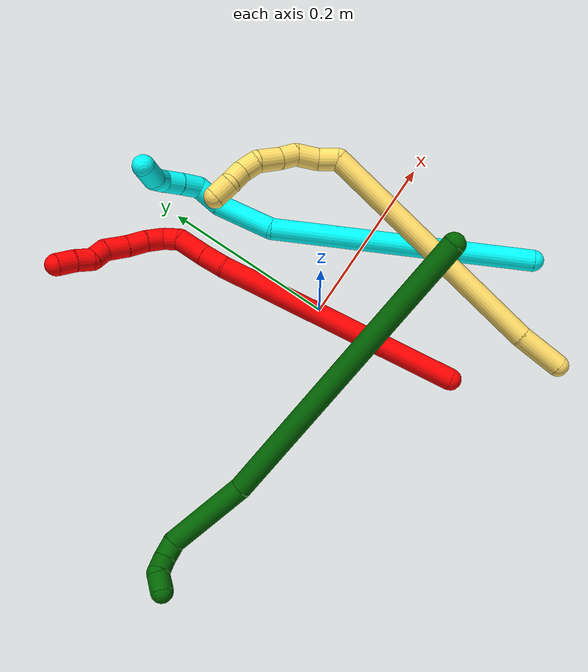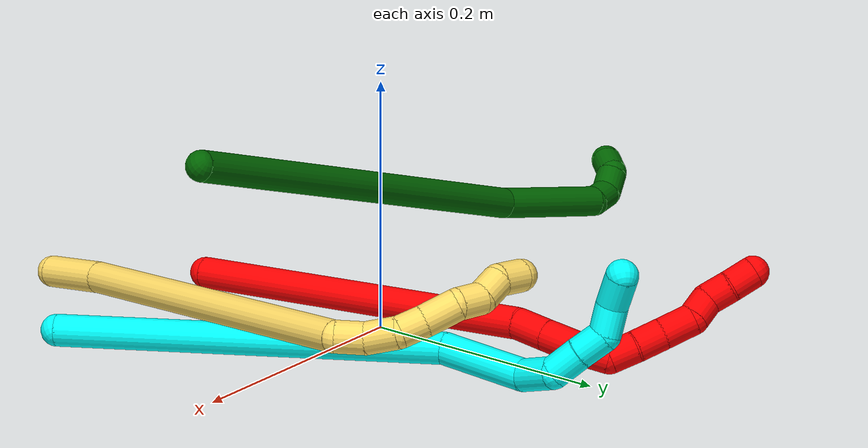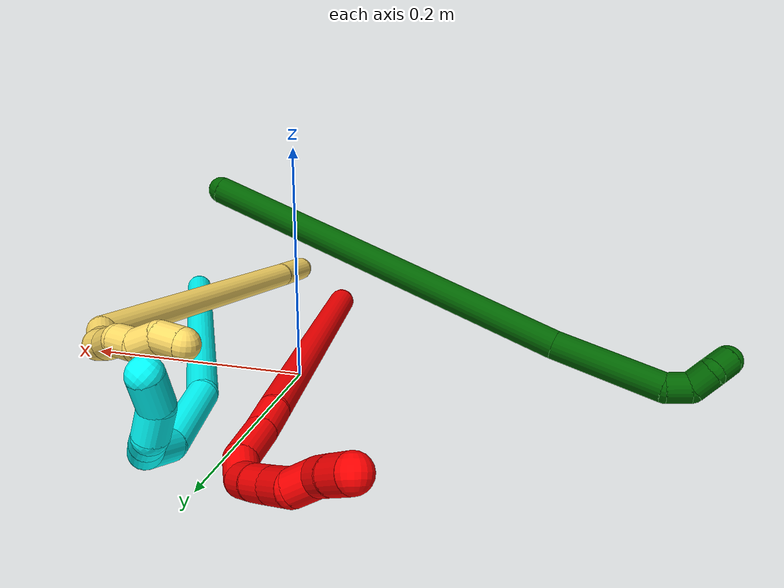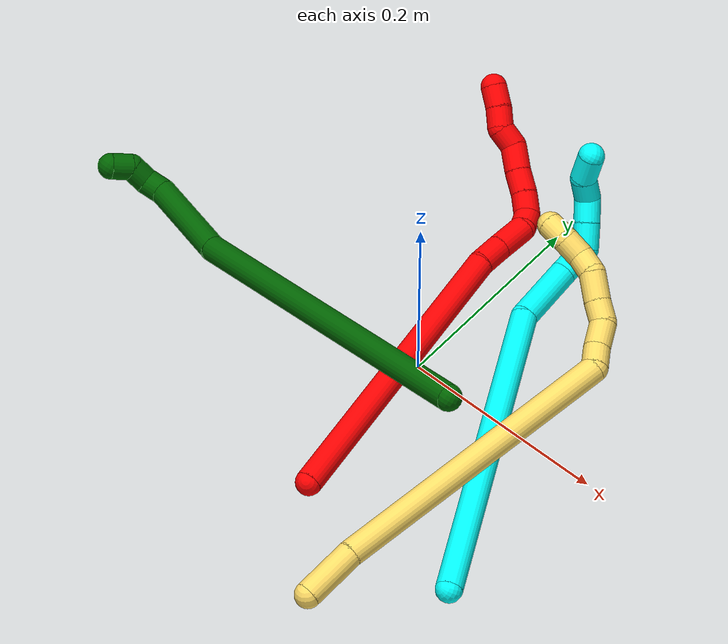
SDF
<sdf version="1.7">
 <world name="default">
  <model name="2">
   <static>0</static>
   <link name="2">
    <collision name="collision-cylinder-e_1_1_4">
     <pose>-0.03202 0.120214 0.07095 -1.03762 -0.225487 0.129117</pose>
     <geometry><cylinder><radius>0.0125</radius><length>0.286429</length></cylinder></geometry>
     <surface>
      <friction><ode><mu>1.16</mu><mu2>1.16</mu2><slip1>0</slip1><slip2>0</slip2></ode></friction>
      <contact><ode><kp>1e+06</kp><kd>1</kd><max_vel>0</max_vel><min_depth>0.001</min_depth></ode></contact>
     </surface>
    </collision>
    <visual name="visual-cylinder-e_1_1_4">
     <pose>-0.03202 0.120214 0.07095 -1.03762 -0.225487 0.129117</pose>
     <geometry><cylinder><radius>0.0125</radius><length>0.286429</length></cylinder></geometry>
     <material><ambient>1 0 0 1</ambient></material>
    </visual>
    <collision name="collision-cylinder-e_2_4_5">
     <pose>-0.068343 0.250228 0.15053 -0.848756 -0.318293 0.144789</pose>
     <geometry><cylinder><radius>0.0125</radius><length>0.0275</length></cylinder></geometry>
     <surface>
      <friction><ode><mu>1.16</mu><mu2>1.16</mu2><slip1>0</slip1><slip2>0</slip2></ode></friction>
      <contact><ode><kp>1e+06</kp><kd>1</kd><max_vel>0</max_vel><min_depth>0.001</min_depth></ode></contact>
     </surface>
    </collision>
    <visual name="visual-cylinder-e_2_4_5">
     <pose>-0.068343 0.250228 0.15053 -0.848756 -0.318293 0.144789</pose>
     <geometry><cylinder><radius>0.0125</radius><length>0.0275</length></cylinder></geometry>
     <material><ambient>1 0 0 1</ambient></material>
    </visual>
    <collision name="collision-cylinder-e_3_5_6">
     <pose>-0.078867 0.272588 0.169424 -0.885742 -0.366256 0.175231</pose>
     <geometry><cylinder><radius>0.0125</radius><length>0.034744</length></cylinder></geometry>
     <surface>
      <friction><ode><mu>1.16</mu><mu2>1.16</mu2><slip1>0</slip1><slip2>0</slip2></ode></friction>
      <contact><ode><kp>1e+06</kp><kd>1</kd><max_vel>0</max_vel><min_depth>0.001</min_depth></ode></contact>
     </surface>
    </collision>
    <visual name="visual-cylinder-e_3_5_6">
     <pose>-0.078867 0.272588 0.169424 -0.885742 -0.366256 0.175231</pose>
     <geometry><cylinder><radius>0.0125</radius><length>0.034744</length></cylinder></geometry>
     <material><ambient>1 0 0 1</ambient></material>
    </visual>
    <collision name="collision-cylinder-e_4_6_7">
     <pose>-0.083955 0.292014 0.186871 -0.762705 0.113574 -0.045582</pose>
     <geometry><cylinder><radius>0.0125</radius><length>0.020005</length></cylinder></geometry>
     <surface>
      <friction><ode><mu>1.16</mu><mu2>1.16</mu2><slip1>0</slip1><slip2>0</slip2></ode></friction>
      <contact><ode><kp>1e+06</kp><kd>1</kd><max_vel>0</max_vel><min_depth>0.001</min_depth></ode></contact>
     </surface>
    </collision>
    <visual name="visual-cylinder-e_4_6_7">
     <pose>-0.083955 0.292014 0.186871 -0.762705 0.113574 -0.045582</pose>
     <geometry><cylinder><radius>0.0125</radius><length>0.020005</length></cylinder></geometry>
     <material><ambient>1 0 0 1</ambient></material>
    </visual>
    <collision name="collision-cylinder-e_5_7_8">
     <pose>-0.078228 0.308446 0.195535 -1.41734 0.44311 -0.381487</pose>
     <geometry><cylinder><radius>0.0125</radius><length>0.021428</length></cylinder></geometry>
     <surface>
      <friction><ode><mu>1.16</mu><mu2>1.16</mu2><slip1>0</slip1><slip2>0</slip2></ode></friction>
      <contact><ode><kp>1e+06</kp><kd>1</kd><max_vel>0</max_vel><min_depth>0.001</min_depth></ode></contact>
     </surface>
    </collision>
    <visual name="visual-cylinder-e_5_7_8">
     <pose>-0.078228 0.308446 0.195535 -1.41734 0.44311 -0.381487</pose>
     <geometry><cylinder><radius>0.0125</radius><length>0.021428</length></cylinder></geometry>
     <material><ambient>1 0 0 1</ambient></material>
    </visual>
    <collision name="collision-cylinder-e_6_8_9">
     <pose>-0.067416 0.327435 0.198404 -1.42444 0.578347 -0.502872</pose>
     <geometry><cylinder><radius>0.0125</radius><length>0.022753</length></cylinder></geometry>
     <surface>
      <friction><ode><mu>1.16</mu><mu2>1.16</mu2><slip1>0</slip1><slip2>0</slip2></ode></friction>
      <contact><ode><kp>1e+06</kp><kd>1</kd><max_vel>0</max_vel><min_depth>0.001</min_depth></ode></contact>
     </surface>
    </collision>
    <visual name="visual-cylinder-e_6_8_9">
     <pose>-0.067416 0.327435 0.198404 -1.42444 0.578347 -0.502872</pose>
     <geometry><cylinder><radius>0.0125</radius><length>0.022753</length></cylinder></geometry>
     <material><ambient>1 0 0 1</ambient></material>
    </visual>
    <collision name="collision-cylinder-e_7_9_10">
     <pose>-0.05523 0.348347 0.201045 -1.4623 0.476676 -0.429148</pose>
     <geometry><cylinder><radius>0.0125</radius><length>0.026011</length></cylinder></geometry>
     <surface>
      <friction><ode><mu>1.16</mu><mu2>1.16</mu2><slip1>0</slip1><slip2>0</slip2></ode></friction>
      <contact><ode><kp>1e+06</kp><kd>1</kd><max_vel>0</max_vel><min_depth>0.001</min_depth></ode></contact>
     </surface>
    </collision>
    <visual name="visual-cylinder-e_7_9_10">
     <pose>-0.05523 0.348347 0.201045 -1.4623 0.476676 -0.429148</pose>
     <geometry><cylinder><radius>0.0125</radius><length>0.026011</length></cylinder></geometry>
     <material><ambient>1 0 0 1</ambient></material>
    </visual>
    <collision name="collision-cylinder-e_8_10_11">
     <pose>-0.041556 0.365752 0.199525 -2.00873 0.867549 -1.25901</pose>
     <geometry><cylinder><radius>0.0125</radius><length>0.020206</length></cylinder></geometry>
     <surface>
      <friction><ode><mu>1.16</mu><mu2>1.16</mu2><slip1>0</slip1><slip2>0</slip2></ode></friction>
      <contact><ode><kp>1e+06</kp><kd>1</kd><max_vel>0</max_vel><min_depth>0.001</min_depth></ode></contact>
     </surface>
    </collision>
    <visual name="visual-cylinder-e_8_10_11">
     <pose>-0.041556 0.365752 0.199525 -2.00873 0.867549 -1.25901</pose>
     <geometry><cylinder><radius>0.0125</radius><length>0.020206</length></cylinder></geometry>
     <material><ambient>1 0 0 1</ambient></material>
    </visual>
    <collision name="collision-cylinder-e_9_11_12">
     <pose>-0.030081 0.380953 0.196838 -1.56183 0.38559 -0.382231</pose>
     <geometry><cylinder><radius>0.0125</radius><length>0.02004</length></cylinder></geometry>
     <surface>
      <friction><ode><mu>1.16</mu><mu2>1.16</mu2><slip1>0</slip1><slip2>0</slip2></ode></friction>
      <contact><ode><kp>1e+06</kp><kd>1</kd><max_vel>0</max_vel><min_depth>0.001</min_depth></ode></contact>
     </surface>
    </collision>
    <visual name="visual-cylinder-e_9_11_12">
     <pose>-0.030081 0.380953 0.196838 -1.56183 0.38559 -0.382231</pose>
     <geometry><cylinder><radius>0.0125</radius><length>0.02004</length></cylinder></geometry>
     <material><ambient>1 0 0 1</ambient></material>
    </visual>
    <collision name="collision-cylinder-e_10_12_2">
     <pose>-0.021087 0.399278 0.1969 -1.57317 0.524136 -0.525326</pose>
     <geometry><cylinder><radius>0.0125</radius><length>0.020885</length></cylinder></geometry>
     <surface>
      <friction><ode><mu>1.16</mu><mu2>1.16</mu2><slip1>0</slip1><slip2>0</slip2></ode></friction>
      <contact><ode><kp>1e+06</kp><kd>1</kd><max_vel>0</max_vel><min_depth>0.001</min_depth></ode></contact>
     </surface>
    </collision>
    <visual name="visual-cylinder-e_10_12_2">
     <pose>-0.021087 0.399278 0.1969 -1.57317 0.524136 -0.525326</pose>
     <geometry><cylinder><radius>0.0125</radius><length>0.020885</length></cylinder></geometry>
     <material><ambient>1 0 0 1</ambient></material>
    </visual>
    <collision name="collision-sphere-2">
     <pose>-0.015861 0.408319 0.196878 0 -0 0</pose>
     <geometry><sphere><radius>0.0125</radius></sphere></geometry>
     <surface>
      <friction><ode><mu>1.16</mu><mu2>1.16</mu2><slip1>0</slip1><slip2>0</slip2></ode></friction>
      <contact><ode><kp>1e+06</kp><kd>1</kd><max_vel>0</max_vel><min_depth>0.001</min_depth></ode></contact>
     </surface>
    </collision>
    <visual name="visual-sphere-2">
     <pose>-0.015861 0.408319 0.196878 0 -0 0</pose>
     <geometry><sphere><radius>0.0125</radius></sphere></geometry>
     <material><ambient>1 0 0 1</ambient></material>
    </visual>
    <collision name="collision-sphere-12">
     <pose>-0.026313 0.390237 0.196921 0 -0 0</pose>
     <geometry><sphere><radius>0.0125</radius></sphere></geometry>
     <surface>
      <friction><ode><mu>1.16</mu><mu2>1.16</mu2><slip1>0</slip1><slip2>0</slip2></ode></friction>
      <contact><ode><kp>1e+06</kp><kd>1</kd><max_vel>0</max_vel><min_depth>0.001</min_depth></ode></contact>
     </surface>
    </collision>
    <visual name="visual-sphere-12">
     <pose>-0.026313 0.390237 0.196921 0 -0 0</pose>
     <geometry><sphere><radius>0.0125</radius></sphere></geometry>
     <material><ambient>1 0 0 1</ambient></material>
    </visual>
    <collision name="collision-sphere-11">
     <pose>-0.03385 0.371669 0.196755 0 -0 0</pose>
     <geometry><sphere><radius>0.0125</radius></sphere></geometry>
     <surface>
      <friction><ode><mu>1.16</mu><mu2>1.16</mu2><slip1>0</slip1><slip2>0</slip2></ode></friction>
      <contact><ode><kp>1e+06</kp><kd>1</kd><max_vel>0</max_vel><min_depth>0.001</min_depth></ode></contact>
     </surface>
    </collision>
    <visual name="visual-sphere-11">
     <pose>-0.03385 0.371669 0.196755 0 -0 0</pose>
     <geometry><sphere><radius>0.0125</radius></sphere></geometry>
     <material><ambient>1 0 0 1</ambient></material>
    </visual>
    <collision name="collision-sphere-10">
     <pose>-0.049262 0.359835 0.202296 0 -0 0</pose>
     <geometry><sphere><radius>0.0125</radius></sphere></geometry>
     <surface>
      <friction><ode><mu>1.16</mu><mu2>1.16</mu2><slip1>0</slip1><slip2>0</slip2></ode></friction>
      <contact><ode><kp>1e+06</kp><kd>1</kd><max_vel>0</max_vel><min_depth>0.001</min_depth></ode></contact>
     </surface>
    </collision>
    <visual name="visual-sphere-10">
     <pose>-0.049262 0.359835 0.202296 0 -0 0</pose>
     <geometry><sphere><radius>0.0125</radius></sphere></geometry>
     <material><ambient>1 0 0 1</ambient></material>
    </visual>
    <collision name="collision-sphere-9">
     <pose>-0.061197 0.33686 0.199793 0 -0 0</pose>
     <geometry><sphere><radius>0.0125</radius></sphere></geometry>
     <surface>
      <friction><ode><mu>1.16</mu><mu2>1.16</mu2><slip1>0</slip1><slip2>0</slip2></ode></friction>
      <contact><ode><kp>1e+06</kp><kd>1</kd><max_vel>0</max_vel><min_depth>0.001</min_depth></ode></contact>
     </surface>
    </collision>
    <visual name="visual-sphere-9">
     <pose>-0.061197 0.33686 0.199793 0 -0 0</pose>
     <geometry><sphere><radius>0.0125</radius></sphere></geometry>
     <material><ambient>1 0 0 1</ambient></material>
    </visual>
    <collision name="collision-sphere-4">
     <pose>-0.06404 0.240427 0.141899 0 -0 0</pose>
     <geometry><sphere><radius>0.0125</radius></sphere></geometry>
     <surface>
      <friction><ode><mu>1.16</mu><mu2>1.16</mu2><slip1>0</slip1><slip2>0</slip2></ode></friction>
      <contact><ode><kp>1e+06</kp><kd>1</kd><max_vel>0</max_vel><min_depth>0.001</min_depth></ode></contact>
     </surface>
    </collision>
    <visual name="visual-sphere-4">
     <pose>-0.06404 0.240427 0.141899 0 -0 0</pose>
     <geometry><sphere><radius>0.0125</radius></sphere></geometry>
     <material><ambient>1 0 0 1</ambient></material>
    </visual>
    <collision name="collision-sphere-1">
     <geometry><sphere><radius>0.0125</radius></sphere></geometry>
     <surface>
      <friction><ode><mu>1.16</mu><mu2>1.16</mu2><slip1>0</slip1><slip2>0</slip2></ode></friction>
      <contact><ode><kp>1e+06</kp><kd>1</kd><max_vel>0</max_vel><min_depth>0.001</min_depth></ode></contact>
     </surface>
    </collision>
    <visual name="visual-sphere-1">
     <geometry><sphere><radius>0.0125</radius></sphere></geometry>
     <material><ambient>1 0 0 1</ambient></material>
    </visual>
    <collision name="collision-sphere-8">
     <pose>-0.073634 0.318011 0.197015 0 -0 0</pose>
     <geometry><sphere><radius>0.0125</radius></sphere></geometry>
     <surface>
      <friction><ode><mu>1.16</mu><mu2>1.16</mu2><slip1>0</slip1><slip2>0</slip2></ode></friction>
      <contact><ode><kp>1e+06</kp><kd>1</kd><max_vel>0</max_vel><min_depth>0.001</min_depth></ode></contact>
     </surface>
    </collision>
    <visual name="visual-sphere-8">
     <pose>-0.073634 0.318011 0.197015 0 -0 0</pose>
     <geometry><sphere><radius>0.0125</radius></sphere></geometry>
     <material><ambient>1 0 0 1</ambient></material>
    </visual>
    <collision name="collision-sphere-5">
     <pose>-0.072646 0.260028 0.159161 0 -0 0</pose>
     <geometry><sphere><radius>0.0125</radius></sphere></geometry>
     <surface>
      <friction><ode><mu>1.16</mu><mu2>1.16</mu2><slip1>0</slip1><slip2>0</slip2></ode></friction>
      <contact><ode><kp>1e+06</kp><kd>1</kd><max_vel>0</max_vel><min_depth>0.001</min_depth></ode></contact>
     </surface>
    </collision>
    <visual name="visual-sphere-5">
     <pose>-0.072646 0.260028 0.159161 0 -0 0</pose>
     <geometry><sphere><radius>0.0125</radius></sphere></geometry>
     <material><ambient>1 0 0 1</ambient></material>
    </visual>
    <collision name="collision-sphere-6">
     <pose>-0.085089 0.285148 0.179686 0 -0 0</pose>
     <geometry><sphere><radius>0.0125</radius></sphere></geometry>
     <surface>
      <friction><ode><mu>1.16</mu><mu2>1.16</mu2><slip1>0</slip1><slip2>0</slip2></ode></friction>
      <contact><ode><kp>1e+06</kp><kd>1</kd><max_vel>0</max_vel><min_depth>0.001</min_depth></ode></contact>
     </surface>
    </collision>
    <visual name="visual-sphere-6">
     <pose>-0.085089 0.285148 0.179686 0 -0 0</pose>
     <geometry><sphere><radius>0.0125</radius></sphere></geometry>
     <material><ambient>1 0 0 1</ambient></material>
    </visual>
    <collision name="collision-sphere-7">
     <pose>-0.082821 0.29888 0.194056 0 -0 0</pose>
     <geometry><sphere><radius>0.0125</radius></sphere></geometry>
     <surface>
      <friction><ode><mu>1.16</mu><mu2>1.16</mu2><slip1>0</slip1><slip2>0</slip2></ode></friction>
      <contact><ode><kp>1e+06</kp><kd>1</kd><max_vel>0</max_vel><min_depth>0.001</min_depth></ode></contact>
     </surface>
    </collision>
    <visual name="visual-sphere-7">
     <pose>-0.082821 0.29888 0.194056 0 -0 0</pose>
     <geometry><sphere><radius>0.0125</radius></sphere></geometry>
     <material><ambient>1 0 0 1</ambient></material>
    </visual>
    <inertial>
     <pose>-0.044 0.20622 0.120217 0 -0 0</pose>
     <mass>0.5</mass>
     <inertia>
      <ixx>0.002162</ixx>
      <ixy>0</ixy>
      <ixz>0</ixz>
      <iyy>0.001327</iyy>
      <iyz>0</iyz>
      <izz>-0.001216</izz>
     </inertia>
    </inertial>
   </link>
   <pose>0.014856 -0.168418 0.011496 2.56928 0.015216 -2.78324</pose>
  </model>
  <model name="3">
   <static>0</static>
   <link name="3">
    <collision name="collision-cylinder-e_1_1_4">
     <pose>-0.077032 0.123366 0.042637 -1.23803 -0.533155 0.384294</pose>
     <geometry><cylinder><radius>0.0125</radius><length>0.303123</length></cylinder></geometry>
     <surface>
      <friction><ode><mu>1.16</mu><mu2>1.16</mu2><slip1>0</slip1><slip2>0</slip2></ode></friction>
      <contact><ode><kp>1e+06</kp><kd>1</kd><max_vel>0</max_vel><min_depth>0.001</min_depth></ode></contact>
     </surface>
    </collision>
    <visual name="visual-cylinder-e_1_1_4">
     <pose>-0.077032 0.123366 0.042637 -1.23803 -0.533155 0.384294</pose>
     <geometry><cylinder><radius>0.0125</radius><length>0.303123</length></cylinder></geometry>
     <material><ambient>0.003922 1 0.996078 1</ambient></material>
    </visual>
    <collision name="collision-cylinder-e_2_4_5">
     <pose>-0.172145 0.267742 0.105692 -0.799721 -0.55296 0.2387</pose>
     <geometry><cylinder><radius>0.0125</radius><length>0.068856</length></cylinder></geometry>
     <surface>
      <friction><ode><mu>1.16</mu><mu2>1.16</mu2><slip1>0</slip1><slip2>0</slip2></ode></friction>
      <contact><ode><kp>1e+06</kp><kd>1</kd><max_vel>0</max_vel><min_depth>0.001</min_depth></ode></contact>
     </surface>
    </collision>
    <visual name="visual-cylinder-e_2_4_5">
     <pose>-0.172145 0.267742 0.105692 -0.799721 -0.55296 0.2387</pose>
     <geometry><cylinder><radius>0.0125</radius><length>0.068856</length></cylinder></geometry>
     <material><ambient>0.003922 1 0.996078 1</ambient></material>
    </visual>
    <collision name="collision-cylinder-e_3_5_6">
     <pose>-0.203274 0.293802 0.13225 -0.688115 -1.02356 0.397214</pose>
     <geometry><cylinder><radius>0.0125</radius><length>0.030556</length></cylinder></geometry>
     <surface>
      <friction><ode><mu>1.16</mu><mu2>1.16</mu2><slip1>0</slip1><slip2>0</slip2></ode></friction>
      <contact><ode><kp>1e+06</kp><kd>1</kd><max_vel>0</max_vel><min_depth>0.001</min_depth></ode></contact>
     </surface>
    </collision>
    <visual name="visual-cylinder-e_3_5_6">
     <pose>-0.203274 0.293802 0.13225 -0.688115 -1.02356 0.397214</pose>
     <geometry><cylinder><radius>0.0125</radius><length>0.030556</length></cylinder></geometry>
     <material><ambient>0.003922 1 0.996078 1</ambient></material>
    </visual>
    <collision name="collision-cylinder-e_4_6_7">
     <pose>-0.226141 0.305661 0.135009 -2.03166 -0.911896 1.33851</pose>
     <geometry><cylinder><radius>0.0125</radius><length>0.02484</length></cylinder></geometry>
     <surface>
      <friction><ode><mu>1.16</mu><mu2>1.16</mu2><slip1>0</slip1><slip2>0</slip2></ode></friction>
      <contact><ode><kp>1e+06</kp><kd>1</kd><max_vel>0</max_vel><min_depth>0.001</min_depth></ode></contact>
     </surface>
    </collision>
    <visual name="visual-cylinder-e_4_6_7">
     <pose>-0.226141 0.305661 0.135009 -2.03166 -0.911896 1.33851</pose>
     <geometry><cylinder><radius>0.0125</radius><length>0.02484</length></cylinder></geometry>
     <material><ambient>0.003922 1 0.996078 1</ambient></material>
    </visual>
    <collision name="collision-cylinder-e_5_7_8">
     <pose>-0.244701 0.319299 0.128554 -1.99376 -0.862483 1.23708</pose>
     <geometry><cylinder><radius>0.0125</radius><length>0.023017</length></cylinder></geometry>
     <surface>
      <friction><ode><mu>1.16</mu><mu2>1.16</mu2><slip1>0</slip1><slip2>0</slip2></ode></friction>
      <contact><ode><kp>1e+06</kp><kd>1</kd><max_vel>0</max_vel><min_depth>0.001</min_depth></ode></contact>
     </surface>
    </collision>
    <visual name="visual-cylinder-e_5_7_8">
     <pose>-0.244701 0.319299 0.128554 -1.99376 -0.862483 1.23708</pose>
     <geometry><cylinder><radius>0.0125</radius><length>0.023017</length></cylinder></geometry>
     <material><ambient>0.003922 1 0.996078 1</ambient></material>
    </visual>
    <collision name="collision-cylinder-e_6_8_9">
     <pose>-0.261446 0.327066 0.117089 -3.03003 -0.75868 2.86325</pose>
     <geometry><cylinder><radius>0.0125</radius><length>0.023271</length></cylinder></geometry>
     <surface>
      <friction><ode><mu>1.16</mu><mu2>1.16</mu2><slip1>0</slip1><slip2>0</slip2></ode></friction>
      <contact><ode><kp>1e+06</kp><kd>1</kd><max_vel>0</max_vel><min_depth>0.001</min_depth></ode></contact>
     </surface>
    </collision>
    <visual name="visual-cylinder-e_6_8_9">
     <pose>-0.261446 0.327066 0.117089 -3.03003 -0.75868 2.86325</pose>
     <geometry><cylinder><radius>0.0125</radius><length>0.023271</length></cylinder></geometry>
     <material><ambient>0.003922 1 0.996078 1</ambient></material>
    </visual>
    <collision name="collision-cylinder-e_7_9_2">
     <pose>-0.281609 0.327087 0.103724 2.95885 -1.17662 -2.8686</pose>
     <geometry><cylinder><radius>0.0125</radius><length>0.026338</length></cylinder></geometry>
     <surface>
      <friction><ode><mu>1.16</mu><mu2>1.16</mu2><slip1>0</slip1><slip2>0</slip2></ode></friction>
      <contact><ode><kp>1e+06</kp><kd>1</kd><max_vel>0</max_vel><min_depth>0.001</min_depth></ode></contact>
     </surface>
    </collision>
    <visual name="visual-cylinder-e_7_9_2">
     <pose>-0.281609 0.327087 0.103724 2.95885 -1.17662 -2.8686</pose>
     <geometry><cylinder><radius>0.0125</radius><length>0.026338</length></cylinder></geometry>
     <material><ambient>0.003922 1 0.996078 1</ambient></material>
    </visual>
    <collision name="collision-sphere-2">
     <pose>-0.293768 0.326168 0.098751 0 -0 0</pose>
     <geometry><sphere><radius>0.0125</radius></sphere></geometry>
     <surface>
      <friction><ode><mu>1.16</mu><mu2>1.16</mu2><slip1>0</slip1><slip2>0</slip2></ode></friction>
      <contact><ode><kp>1e+06</kp><kd>1</kd><max_vel>0</max_vel><min_depth>0.001</min_depth></ode></contact>
     </surface>
    </collision>
    <visual name="visual-sphere-2">
     <pose>-0.293768 0.326168 0.098751 0 -0 0</pose>
     <geometry><sphere><radius>0.0125</radius></sphere></geometry>
     <material><ambient>0.003922 1 0.996078 1</ambient></material>
    </visual>
    <collision name="collision-sphere-9">
     <pose>-0.26945 0.328006 0.108697 0 -0 0</pose>
     <geometry><sphere><radius>0.0125</radius></sphere></geometry>
     <surface>
      <friction><ode><mu>1.16</mu><mu2>1.16</mu2><slip1>0</slip1><slip2>0</slip2></ode></friction>
      <contact><ode><kp>1e+06</kp><kd>1</kd><max_vel>0</max_vel><min_depth>0.001</min_depth></ode></contact>
     </surface>
    </collision>
    <visual name="visual-sphere-9">
     <pose>-0.26945 0.328006 0.108697 0 -0 0</pose>
     <geometry><sphere><radius>0.0125</radius></sphere></geometry>
     <material><ambient>0.003922 1 0.996078 1</ambient></material>
    </visual>
    <collision name="collision-sphere-4">
     <pose>-0.154063 0.246731 0.085274 0 -0 0</pose>
     <geometry><sphere><radius>0.0125</radius></sphere></geometry>
     <surface>
      <friction><ode><mu>1.16</mu><mu2>1.16</mu2><slip1>0</slip1><slip2>0</slip2></ode></friction>
      <contact><ode><kp>1e+06</kp><kd>1</kd><max_vel>0</max_vel><min_depth>0.001</min_depth></ode></contact>
     </surface>
    </collision>
    <visual name="visual-sphere-4">
     <pose>-0.154063 0.246731 0.085274 0 -0 0</pose>
     <geometry><sphere><radius>0.0125</radius></sphere></geometry>
     <material><ambient>0.003922 1 0.996078 1</ambient></material>
    </visual>
    <collision name="collision-sphere-1">
     <geometry><sphere><radius>0.0125</radius></sphere></geometry>
     <surface>
      <friction><ode><mu>1.16</mu><mu2>1.16</mu2><slip1>0</slip1><slip2>0</slip2></ode></friction>
      <contact><ode><kp>1e+06</kp><kd>1</kd><max_vel>0</max_vel><min_depth>0.001</min_depth></ode></contact>
     </surface>
    </collision>
    <visual name="visual-sphere-1">
     <geometry><sphere><radius>0.0125</radius></sphere></geometry>
     <material><ambient>0.003922 1 0.996078 1</ambient></material>
    </visual>
    <collision name="collision-sphere-8">
     <pose>-0.253441 0.326126 0.125481 0 -0 0</pose>
     <geometry><sphere><radius>0.0125</radius></sphere></geometry>
     <surface>
      <friction><ode><mu>1.16</mu><mu2>1.16</mu2><slip1>0</slip1><slip2>0</slip2></ode></friction>
      <contact><ode><kp>1e+06</kp><kd>1</kd><max_vel>0</max_vel><min_depth>0.001</min_depth></ode></contact>
     </surface>
    </collision>
    <visual name="visual-sphere-8">
     <pose>-0.253441 0.326126 0.125481 0 -0 0</pose>
     <geometry><sphere><radius>0.0125</radius></sphere></geometry>
     <material><ambient>0.003922 1 0.996078 1</ambient></material>
    </visual>
    <collision name="collision-sphere-5">
     <pose>-0.190227 0.288753 0.126109 0 -0 0</pose>
     <geometry><sphere><radius>0.0125</radius></sphere></geometry>
     <surface>
      <friction><ode><mu>1.16</mu><mu2>1.16</mu2><slip1>0</slip1><slip2>0</slip2></ode></friction>
      <contact><ode><kp>1e+06</kp><kd>1</kd><max_vel>0</max_vel><min_depth>0.001</min_depth></ode></contact>
     </surface>
    </collision>
    <visual name="visual-sphere-5">
     <pose>-0.190227 0.288753 0.126109 0 -0 0</pose>
     <geometry><sphere><radius>0.0125</radius></sphere></geometry>
     <material><ambient>0.003922 1 0.996078 1</ambient></material>
    </visual>
    <collision name="collision-sphere-6">
     <pose>-0.216321 0.298851 0.13839 0 -0 0</pose>
     <geometry><sphere><radius>0.0125</radius></sphere></geometry>
     <surface>
      <friction><ode><mu>1.16</mu><mu2>1.16</mu2><slip1>0</slip1><slip2>0</slip2></ode></friction>
      <contact><ode><kp>1e+06</kp><kd>1</kd><max_vel>0</max_vel><min_depth>0.001</min_depth></ode></contact>
     </surface>
    </collision>
    <visual name="visual-sphere-6">
     <pose>-0.216321 0.298851 0.13839 0 -0 0</pose>
     <geometry><sphere><radius>0.0125</radius></sphere></geometry>
     <material><ambient>0.003922 1 0.996078 1</ambient></material>
    </visual>
    <collision name="collision-sphere-7">
     <pose>-0.235961 0.312472 0.131627 0 -0 0</pose>
     <geometry><sphere><radius>0.0125</radius></sphere></geometry>
     <surface>
      <friction><ode><mu>1.16</mu><mu2>1.16</mu2><slip1>0</slip1><slip2>0</slip2></ode></friction>
      <contact><ode><kp>1e+06</kp><kd>1</kd><max_vel>0</max_vel><min_depth>0.001</min_depth></ode></contact>
     </surface>
    </collision>
    <visual name="visual-sphere-7">
     <pose>-0.235961 0.312472 0.131627 0 -0 0</pose>
     <geometry><sphere><radius>0.0125</radius></sphere></geometry>
     <material><ambient>0.003922 1 0.996078 1</ambient></material>
    </visual>
    <inertial>
     <pose>-0.13233 0.191951 0.072024 0 -0 0</pose>
     <mass>0.5</mass>
     <inertia>
      <ixx>0.002627</ixx>
      <ixy>0</ixy>
      <ixz>0</ixz>
      <iyy>0.001948</iyy>
      <iyz>0</iyz>
      <izz>-0.000702</izz>
     </inertia>
    </inertial>
   </link>
   <pose>0.183592 -0.172844 0.011495 -2.80998 0.842393 -1.84039</pose>
  </model>
  <model name="5">
   <static>0</static>
   <link name="5">
    <collision name="collision-cylinder-e_1_1_4">
     <pose>0.001348 0.026733 0.003616 -1.43634 0.049923 -0.043627</pose>
     <geometry><cylinder><radius>0.0125</radius><length>0.05402</length></cylinder></geometry>
     <surface>
      <friction><ode><mu>1.16</mu><mu2>1.16</mu2><slip1>0</slip1><slip2>0</slip2></ode></friction>
      <contact><ode><kp>1e+06</kp><kd>1</kd><max_vel>0</max_vel><min_depth>0.001</min_depth></ode></contact>
     </surface>
    </collision>
    <visual name="visual-cylinder-e_1_1_4">
     <pose>0.001348 0.026733 0.003616 -1.43634 0.049923 -0.043627</pose>
     <geometry><cylinder><radius>0.0125</radius><length>0.05402</length></cylinder></geometry>
     <material><ambient>1 0.858824 0.4 1</ambient></material>
    </visual>
    <collision name="collision-cylinder-e_2_4_5">
     <pose>0.024564 0.193936 0.018208 -1.49282 0.153975 -0.142454</pose>
     <geometry><cylinder><radius>0.0125</radius><length>0.285169</length></cylinder></geometry>
     <surface>
      <friction><ode><mu>1.16</mu><mu2>1.16</mu2><slip1>0</slip1><slip2>0</slip2></ode></friction>
      <contact><ode><kp>1e+06</kp><kd>1</kd><max_vel>0</max_vel><min_depth>0.001</min_depth></ode></contact>
     </surface>
    </collision>
    <visual name="visual-cylinder-e_2_4_5">
     <pose>0.024564 0.193936 0.018208 -1.49282 0.153975 -0.142454</pose>
     <geometry><cylinder><radius>0.0125</radius><length>0.285169</length></cylinder></geometry>
     <material><ambient>1 0.858824 0.4 1</ambient></material>
    </visual>
    <collision name="collision-cylinder-e_3_5_6">
     <pose>0.039745 0.34376 0.030178 -1.46484 -0.617949 0.559067</pose>
     <geometry><cylinder><radius>0.0125</radius><length>0.023083</length></cylinder></geometry>
     <surface>
      <friction><ode><mu>1.16</mu><mu2>1.16</mu2><slip1>0</slip1><slip2>0</slip2></ode></friction>
      <contact><ode><kp>1e+06</kp><kd>1</kd><max_vel>0</max_vel><min_depth>0.001</min_depth></ode></contact>
     </surface>
    </collision>
    <visual name="visual-cylinder-e_3_5_6">
     <pose>0.039745 0.34376 0.030178 -1.46484 -0.617949 0.559067</pose>
     <geometry><cylinder><radius>0.0125</radius><length>0.023083</length></cylinder></geometry>
     <material><ambient>1 0.858824 0.4 1</ambient></material>
    </visual>
    <collision name="collision-cylinder-e_4_6_7">
     <pose>0.027922 0.364109 0.035602 -1.18782 -0.40884 0.278166</pose>
     <geometry><cylinder><radius>0.0125</radius><length>0.025835</length></cylinder></geometry>
     <surface>
      <friction><ode><mu>1.16</mu><mu2>1.16</mu2><slip1>0</slip1><slip2>0</slip2></ode></friction>
      <contact><ode><kp>1e+06</kp><kd>1</kd><max_vel>0</max_vel><min_depth>0.001</min_depth></ode></contact>
     </surface>
    </collision>
    <visual name="visual-cylinder-e_4_6_7">
     <pose>0.027922 0.364109 0.035602 -1.18782 -0.40884 0.278166</pose>
     <geometry><cylinder><radius>0.0125</radius><length>0.025835</length></cylinder></geometry>
     <material><ambient>1 0.858824 0.4 1</ambient></material>
    </visual>
    <collision name="collision-cylinder-e_5_7_8">
     <pose>0.015484 0.380283 0.044824 -0.824255 -0.802488 0.366774</pose>
     <geometry><cylinder><radius>0.0125</radius><length>0.020311</length></cylinder></geometry>
     <surface>
      <friction><ode><mu>1.16</mu><mu2>1.16</mu2><slip1>0</slip1><slip2>0</slip2></ode></friction>
      <contact><ode><kp>1e+06</kp><kd>1</kd><max_vel>0</max_vel><min_depth>0.001</min_depth></ode></contact>
     </surface>
    </collision>
    <visual name="visual-cylinder-e_5_7_8">
     <pose>0.015484 0.380283 0.044824 -0.824255 -0.802488 0.366774</pose>
     <geometry><cylinder><radius>0.0125</radius><length>0.020311</length></cylinder></geometry>
     <material><ambient>1 0.858824 0.4 1</ambient></material>
    </visual>
    <collision name="collision-cylinder-e_6_8_9">
     <pose>-0.00057 0.39303 0.057131 -0.788868 -0.687242 0.295707</pose>
     <geometry><cylinder><radius>0.0125</radius><length>0.02759</length></cylinder></geometry>
     <surface>
      <friction><ode><mu>1.16</mu><mu2>1.16</mu2><slip1>0</slip1><slip2>0</slip2></ode></friction>
      <contact><ode><kp>1e+06</kp><kd>1</kd><max_vel>0</max_vel><min_depth>0.001</min_depth></ode></contact>
     </surface>
    </collision>
    <visual name="visual-cylinder-e_6_8_9">
     <pose>-0.00057 0.39303 0.057131 -0.788868 -0.687242 0.295707</pose>
     <geometry><cylinder><radius>0.0125</radius><length>0.02759</length></cylinder></geometry>
     <material><ambient>1 0.858824 0.4 1</ambient></material>
    </visual>
    <collision name="collision-cylinder-e_7_9_10">
     <pose>-0.0188 0.403934 0.067019 -0.952422 -1.16286 0.653676</pose>
     <geometry><cylinder><radius>0.0125</radius><length>0.020651</length></cylinder></geometry>
     <surface>
      <friction><ode><mu>1.16</mu><mu2>1.16</mu2><slip1>0</slip1><slip2>0</slip2></ode></friction>
      <contact><ode><kp>1e+06</kp><kd>1</kd><max_vel>0</max_vel><min_depth>0.001</min_depth></ode></contact>
     </surface>
    </collision>
    <visual name="visual-cylinder-e_7_9_10">
     <pose>-0.0188 0.403934 0.067019 -0.952422 -1.16286 0.653676</pose>
     <geometry><cylinder><radius>0.0125</radius><length>0.020651</length></cylinder></geometry>
     <material><ambient>1 0.858824 0.4 1</ambient></material>
    </visual>
    <collision name="collision-cylinder-e_8_10_11">
     <pose>-0.036926 0.40723 0.075559 0.006773 -0.951481 -0.003489</pose>
     <geometry><cylinder><radius>0.0125</radius><length>0.021241</length></cylinder></geometry>
     <surface>
      <friction><ode><mu>1.16</mu><mu2>1.16</mu2><slip1>0</slip1><slip2>0</slip2></ode></friction>
      <contact><ode><kp>1e+06</kp><kd>1</kd><max_vel>0</max_vel><min_depth>0.001</min_depth></ode></contact>
     </surface>
    </collision>
    <visual name="visual-cylinder-e_8_10_11">
     <pose>-0.036926 0.40723 0.075559 0.006773 -0.951481 -0.003489</pose>
     <geometry><cylinder><radius>0.0125</radius><length>0.021241</length></cylinder></geometry>
     <material><ambient>1 0.858824 0.4 1</ambient></material>
    </visual>
    <collision name="collision-cylinder-e_9_11_2">
     <pose>-0.056304 0.409344 0.083242 -0.95692 -1.32982 0.77241</pose>
     <geometry><cylinder><radius>0.0125</radius><length>0.022099</length></cylinder></geometry>
     <surface>
      <friction><ode><mu>1.16</mu><mu2>1.16</mu2><slip1>0</slip1><slip2>0</slip2></ode></friction>
      <contact><ode><kp>1e+06</kp><kd>1</kd><max_vel>0</max_vel><min_depth>0.001</min_depth></ode></contact>
     </surface>
    </collision>
    <visual name="visual-cylinder-e_9_11_2">
     <pose>-0.056304 0.409344 0.083242 -0.95692 -1.32982 0.77241</pose>
     <geometry><cylinder><radius>0.0125</radius><length>0.022099</length></cylinder></geometry>
     <material><ambient>1 0.858824 0.4 1</ambient></material>
    </visual>
    <collision name="collision-sphere-2">
     <pose>-0.067034 0.411499 0.084761 0 -0 0</pose>
     <geometry><sphere><radius>0.0125</radius></sphere></geometry>
     <surface>
      <friction><ode><mu>1.16</mu><mu2>1.16</mu2><slip1>0</slip1><slip2>0</slip2></ode></friction>
      <contact><ode><kp>1e+06</kp><kd>1</kd><max_vel>0</max_vel><min_depth>0.001</min_depth></ode></contact>
     </surface>
    </collision>
    <visual name="visual-sphere-2">
     <pose>-0.067034 0.411499 0.084761 0 -0 0</pose>
     <geometry><sphere><radius>0.0125</radius></sphere></geometry>
     <material><ambient>1 0.858824 0.4 1</ambient></material>
    </visual>
    <collision name="collision-sphere-11">
     <pose>-0.045574 0.407188 0.081723 0 -0 0</pose>
     <geometry><sphere><radius>0.0125</radius></sphere></geometry>
     <surface>
      <friction><ode><mu>1.16</mu><mu2>1.16</mu2><slip1>0</slip1><slip2>0</slip2></ode></friction>
      <contact><ode><kp>1e+06</kp><kd>1</kd><max_vel>0</max_vel><min_depth>0.001</min_depth></ode></contact>
     </surface>
    </collision>
    <visual name="visual-sphere-11">
     <pose>-0.045574 0.407188 0.081723 0 -0 0</pose>
     <geometry><sphere><radius>0.0125</radius></sphere></geometry>
     <material><ambient>1 0.858824 0.4 1</ambient></material>
    </visual>
    <collision name="collision-sphere-10">
     <pose>-0.028278 0.407272 0.069394 0 -0 0</pose>
     <geometry><sphere><radius>0.0125</radius></sphere></geometry>
     <surface>
      <friction><ode><mu>1.16</mu><mu2>1.16</mu2><slip1>0</slip1><slip2>0</slip2></ode></friction>
      <contact><ode><kp>1e+06</kp><kd>1</kd><max_vel>0</max_vel><min_depth>0.001</min_depth></ode></contact>
     </surface>
    </collision>
    <visual name="visual-sphere-10">
     <pose>-0.028278 0.407272 0.069394 0 -0 0</pose>
     <geometry><sphere><radius>0.0125</radius></sphere></geometry>
     <material><ambient>1 0.858824 0.4 1</ambient></material>
    </visual>
    <collision name="collision-sphere-9">
     <pose>-0.009321 0.400596 0.064645 0 -0 0</pose>
     <geometry><sphere><radius>0.0125</radius></sphere></geometry>
     <surface>
      <friction><ode><mu>1.16</mu><mu2>1.16</mu2><slip1>0</slip1><slip2>0</slip2></ode></friction>
      <contact><ode><kp>1e+06</kp><kd>1</kd><max_vel>0</max_vel><min_depth>0.001</min_depth></ode></contact>
     </surface>
    </collision>
    <visual name="visual-sphere-9">
     <pose>-0.009321 0.400596 0.064645 0 -0 0</pose>
     <geometry><sphere><radius>0.0125</radius></sphere></geometry>
     <material><ambient>1 0.858824 0.4 1</ambient></material>
    </visual>
    <collision name="collision-sphere-4">
     <pose>0.002696 0.053466 0.007232 0 -0 0</pose>
     <geometry><sphere><radius>0.0125</radius></sphere></geometry>
     <surface>
      <friction><ode><mu>1.16</mu><mu2>1.16</mu2><slip1>0</slip1><slip2>0</slip2></ode></friction>
      <contact><ode><kp>1e+06</kp><kd>1</kd><max_vel>0</max_vel><min_depth>0.001</min_depth></ode></contact>
     </surface>
    </collision>
    <visual name="visual-sphere-4">
     <pose>0.002696 0.053466 0.007232 0 -0 0</pose>
     <geometry><sphere><radius>0.0125</radius></sphere></geometry>
     <material><ambient>1 0.858824 0.4 1</ambient></material>
    </visual>
    <collision name="collision-sphere-1">
     <geometry><sphere><radius>0.0125</radius></sphere></geometry>
     <surface>
      <friction><ode><mu>1.16</mu><mu2>1.16</mu2><slip1>0</slip1><slip2>0</slip2></ode></friction>
      <contact><ode><kp>1e+06</kp><kd>1</kd><max_vel>0</max_vel><min_depth>0.001</min_depth></ode></contact>
     </surface>
    </collision>
    <visual name="visual-sphere-1">
     <geometry><sphere><radius>0.0125</radius></sphere></geometry>
     <material><ambient>1 0.858824 0.4 1</ambient></material>
    </visual>
    <collision name="collision-sphere-8">
     <pose>0.008182 0.385464 0.049617 0 -0 0</pose>
     <geometry><sphere><radius>0.0125</radius></sphere></geometry>
     <surface>
      <friction><ode><mu>1.16</mu><mu2>1.16</mu2><slip1>0</slip1><slip2>0</slip2></ode></friction>
      <contact><ode><kp>1e+06</kp><kd>1</kd><max_vel>0</max_vel><min_depth>0.001</min_depth></ode></contact>
     </surface>
    </collision>
    <visual name="visual-sphere-8">
     <pose>0.008182 0.385464 0.049617 0 -0 0</pose>
     <geometry><sphere><radius>0.0125</radius></sphere></geometry>
     <material><ambient>1 0.858824 0.4 1</ambient></material>
    </visual>
    <collision name="collision-sphere-5">
     <pose>0.046431 0.334405 0.029183 0 -0 0</pose>
     <geometry><sphere><radius>0.0125</radius></sphere></geometry>
     <surface>
      <friction><ode><mu>1.16</mu><mu2>1.16</mu2><slip1>0</slip1><slip2>0</slip2></ode></friction>
      <contact><ode><kp>1e+06</kp><kd>1</kd><max_vel>0</max_vel><min_depth>0.001</min_depth></ode></contact>
     </surface>
    </collision>
    <visual name="visual-sphere-5">
     <pose>0.046431 0.334405 0.029183 0 -0 0</pose>
     <geometry><sphere><radius>0.0125</radius></sphere></geometry>
     <material><ambient>1 0.858824 0.4 1</ambient></material>
    </visual>
    <collision name="collision-sphere-6">
     <pose>0.033058 0.353114 0.031173 0 -0 0</pose>
     <geometry><sphere><radius>0.0125</radius></sphere></geometry>
     <surface>
      <friction><ode><mu>1.16</mu><mu2>1.16</mu2><slip1>0</slip1><slip2>0</slip2></ode></friction>
      <contact><ode><kp>1e+06</kp><kd>1</kd><max_vel>0</max_vel><min_depth>0.001</min_depth></ode></contact>
     </surface>
    </collision>
    <visual name="visual-sphere-6">
     <pose>0.033058 0.353114 0.031173 0 -0 0</pose>
     <geometry><sphere><radius>0.0125</radius></sphere></geometry>
     <material><ambient>1 0.858824 0.4 1</ambient></material>
    </visual>
    <collision name="collision-sphere-7">
     <pose>0.022787 0.375103 0.040031 0 -0 0</pose>
     <geometry><sphere><radius>0.0125</radius></sphere></geometry>
     <surface>
      <friction><ode><mu>1.16</mu><mu2>1.16</mu2><slip1>0</slip1><slip2>0</slip2></ode></friction>
      <contact><ode><kp>1e+06</kp><kd>1</kd><max_vel>0</max_vel><min_depth>0.001</min_depth></ode></contact>
     </surface>
    </collision>
    <visual name="visual-sphere-7">
     <pose>0.022787 0.375103 0.040031 0 -0 0</pose>
     <geometry><sphere><radius>0.0125</radius></sphere></geometry>
     <material><ambient>1 0.858824 0.4 1</ambient></material>
    </visual>
    <inertial>
     <pose>0.013197 0.237392 0.028638 0 -0 0</pose>
     <mass>0.5</mass>
     <inertia>
      <ixx>0.001649</ixx>
      <ixy>0</ixy>
      <ixz>0</ixz>
      <iyy>-3.4e-05</iyy>
      <iyz>0</iyz>
      <izz>-0.00222</izz>
     </inertia>
    </inertial>
   </link>
   <pose>0.095367 -0.260253 0.014792 0.002257 -0.202093 -0.033275</pose>
  </model>
  <model name="6">
   <static>0</static>
   <link name="6">
    <collision name="collision-cylinder-e_1_1_4">
     <pose>-0.16516 -0.041464 0.025336 1.02231 -1.28466 -0.794623</pose>
     <geometry><cylinder><radius>0.0125</radius><length>0.344319</length></cylinder></geometry>
     <surface>
      <friction><ode><mu>1.16</mu><mu2>1.16</mu2><slip1>0</slip1><slip2>0</slip2></ode></friction>
      <contact><ode><kp>1e+06</kp><kd>1</kd><max_vel>0</max_vel><min_depth>0.001</min_depth></ode></contact>
     </surface>
    </collision>
    <visual name="visual-cylinder-e_1_1_4">
     <pose>-0.16516 -0.041464 0.025336 1.02231 -1.28466 -0.794623</pose>
     <geometry><cylinder><radius>0.0125</radius><length>0.344319</length></cylinder></geometry>
     <material><ambient>0 0.392157 0.003922 1</ambient></material>
    </visual>
    <collision name="collision-cylinder-e_2_4_5">
     <pose>-0.376417 -0.094947 0.047544 1.82542 -1.30764 -1.56197</pose>
     <geometry><cylinder><radius>0.0125</radius><length>0.095482</length></cylinder></geometry>
     <surface>
      <friction><ode><mu>1.16</mu><mu2>1.16</mu2><slip1>0</slip1><slip2>0</slip2></ode></friction>
      <contact><ode><kp>1e+06</kp><kd>1</kd><max_vel>0</max_vel><min_depth>0.001</min_depth></ode></contact>
     </surface>
    </collision>
    <visual name="visual-cylinder-e_2_4_5">
     <pose>-0.376417 -0.094947 0.047544 1.82542 -1.30764 -1.56197</pose>
     <geometry><cylinder><radius>0.0125</radius><length>0.095482</length></cylinder></geometry>
     <material><ambient>0 0.392157 0.003922 1</ambient></material>
    </visual>
    <collision name="collision-cylinder-e_3_5_6">
     <pose>-0.432362 -0.104892 0.044746 -1.41266 -1.36077 1.2086</pose>
     <geometry><cylinder><radius>0.0125</radius><length>0.020139</length></cylinder></geometry>
     <surface>
      <friction><ode><mu>1.16</mu><mu2>1.16</mu2><slip1>0</slip1><slip2>0</slip2></ode></friction>
      <contact><ode><kp>1e+06</kp><kd>1</kd><max_vel>0</max_vel><min_depth>0.001</min_depth></ode></contact>
     </surface>
    </collision>
    <visual name="visual-cylinder-e_3_5_6">
     <pose>-0.432362 -0.104892 0.044746 -1.41266 -1.36077 1.2086</pose>
     <geometry><cylinder><radius>0.0125</radius><length>0.020139</length></cylinder></geometry>
     <material><ambient>0 0.392157 0.003922 1</ambient></material>
    </visual>
    <collision name="collision-cylinder-e_4_6_7">
     <pose>-0.448959 -0.095984 0.042233 -1.96501 -0.739146 1.05221</pose>
     <geometry><cylinder><radius>0.0125</radius><length>0.020035</length></cylinder></geometry>
     <surface>
      <friction><ode><mu>1.16</mu><mu2>1.16</mu2><slip1>0</slip1><slip2>0</slip2></ode></friction>
      <contact><ode><kp>1e+06</kp><kd>1</kd><max_vel>0</max_vel><min_depth>0.001</min_depth></ode></contact>
     </surface>
    </collision>
    <visual name="visual-cylinder-e_4_6_7">
     <pose>-0.448959 -0.095984 0.042233 -1.96501 -0.739146 1.05221</pose>
     <geometry><cylinder><radius>0.0125</radius><length>0.020035</length></cylinder></geometry>
     <material><ambient>0 0.392157 0.003922 1</ambient></material>
    </visual>
    <collision name="collision-cylinder-e_5_7_2">
     <pose>-0.461198 -0.081689 0.043192 -1.09947 -0.580461 0.362002</pose>
     <geometry><cylinder><radius>0.0125</radius><length>0.020025</length></cylinder></geometry>
     <surface>
      <friction><ode><mu>1.16</mu><mu2>1.16</mu2><slip1>0</slip1><slip2>0</slip2></ode></friction>
      <contact><ode><kp>1e+06</kp><kd>1</kd><max_vel>0</max_vel><min_depth>0.001</min_depth></ode></contact>
     </surface>
    </collision>
    <visual name="visual-cylinder-e_5_7_2">
     <pose>-0.461198 -0.081689 0.043192 -1.09947 -0.580461 0.362002</pose>
     <geometry><cylinder><radius>0.0125</radius><length>0.020025</length></cylinder></geometry>
     <material><ambient>0 0.392157 0.003922 1</ambient></material>
    </visual>
    <collision name="collision-sphere-2">
     <pose>-0.466689 -0.074229 0.046994 0 -0 0</pose>
     <geometry><sphere><radius>0.0125</radius></sphere></geometry>
     <surface>
      <friction><ode><mu>1.16</mu><mu2>1.16</mu2><slip1>0</slip1><slip2>0</slip2></ode></friction>
      <contact><ode><kp>1e+06</kp><kd>1</kd><max_vel>0</max_vel><min_depth>0.001</min_depth></ode></contact>
     </surface>
    </collision>
    <visual name="visual-sphere-2">
     <pose>-0.466689 -0.074229 0.046994 0 -0 0</pose>
     <geometry><sphere><radius>0.0125</radius></sphere></geometry>
     <material><ambient>0 0.392157 0.003922 1</ambient></material>
    </visual>
    <collision name="collision-sphere-7">
     <pose>-0.455707 -0.089148 0.03939 0 -0 0</pose>
     <geometry><sphere><radius>0.0125</radius></sphere></geometry>
     <surface>
      <friction><ode><mu>1.16</mu><mu2>1.16</mu2><slip1>0</slip1><slip2>0</slip2></ode></friction>
      <contact><ode><kp>1e+06</kp><kd>1</kd><max_vel>0</max_vel><min_depth>0.001</min_depth></ode></contact>
     </surface>
    </collision>
    <visual name="visual-sphere-7">
     <pose>-0.455707 -0.089148 0.03939 0 -0 0</pose>
     <geometry><sphere><radius>0.0125</radius></sphere></geometry>
     <material><ambient>0 0.392157 0.003922 1</ambient></material>
    </visual>
    <collision name="collision-sphere-6">
     <pose>-0.442211 -0.102819 0.045077 0 -0 0</pose>
     <geometry><sphere><radius>0.0125</radius></sphere></geometry>
     <surface>
      <friction><ode><mu>1.16</mu><mu2>1.16</mu2><slip1>0</slip1><slip2>0</slip2></ode></friction>
      <contact><ode><kp>1e+06</kp><kd>1</kd><max_vel>0</max_vel><min_depth>0.001</min_depth></ode></contact>
     </surface>
    </collision>
    <visual name="visual-sphere-6">
     <pose>-0.442211 -0.102819 0.045077 0 -0 0</pose>
     <geometry><sphere><radius>0.0125</radius></sphere></geometry>
     <material><ambient>0 0.392157 0.003922 1</ambient></material>
    </visual>
    <collision name="collision-sphere-5">
     <pose>-0.422514 -0.106965 0.044416 0 -0 0</pose>
     <geometry><sphere><radius>0.0125</radius></sphere></geometry>
     <surface>
      <friction><ode><mu>1.16</mu><mu2>1.16</mu2><slip1>0</slip1><slip2>0</slip2></ode></friction>
      <contact><ode><kp>1e+06</kp><kd>1</kd><max_vel>0</max_vel><min_depth>0.001</min_depth></ode></contact>
     </surface>
    </collision>
    <visual name="visual-sphere-5">
     <pose>-0.422514 -0.106965 0.044416 0 -0 0</pose>
     <geometry><sphere><radius>0.0125</radius></sphere></geometry>
     <material><ambient>0 0.392157 0.003922 1</ambient></material>
    </visual>
    <collision name="collision-sphere-1">
     <geometry><sphere><radius>0.0125</radius></sphere></geometry>
     <surface>
      <friction><ode><mu>1.16</mu><mu2>1.16</mu2><slip1>0</slip1><slip2>0</slip2></ode></friction>
      <contact><ode><kp>1e+06</kp><kd>1</kd><max_vel>0</max_vel><min_depth>0.001</min_depth></ode></contact>
     </surface>
    </collision>
    <visual name="visual-sphere-1">
     <geometry><sphere><radius>0.0125</radius></sphere></geometry>
     <material><ambient>0 0.392157 0.003922 1</ambient></material>
    </visual>
    <collision name="collision-sphere-4">
     <pose>-0.330319 -0.082929 0.050672 0 -0 0</pose>
     <geometry><sphere><radius>0.0125</radius></sphere></geometry>
     <surface>
      <friction><ode><mu>1.16</mu><mu2>1.16</mu2><slip1>0</slip1><slip2>0</slip2></ode></friction>
      <contact><ode><kp>1e+06</kp><kd>1</kd><max_vel>0</max_vel><min_depth>0.001</min_depth></ode></contact>
     </surface>
    </collision>
    <visual name="visual-sphere-4">
     <pose>-0.330319 -0.082929 0.050672 0 -0 0</pose>
     <geometry><sphere><radius>0.0125</radius></sphere></geometry>
     <material><ambient>0 0.392157 0.003922 1</ambient></material>
    </visual>
    <inertial>
     <pose>-0.239493 -0.058028 0.031751 0 -0 0</pose>
     <mass>0.5</mass>
     <inertia>
      <ixx>-6.5e-05</ixx>
      <ixy>0</ixy>
      <ixz>0</ixz>
      <iyy>0.002605</iyy>
      <iyz>0</iyz>
      <izz>0.004196</izz>
     </inertia>
    </inertial>
   </link>
   <pose>0.108023 -0.088213 0.142291 2.33748 -0.036757 -0.077435</pose>
  </model>
 </world>
</sdf>
